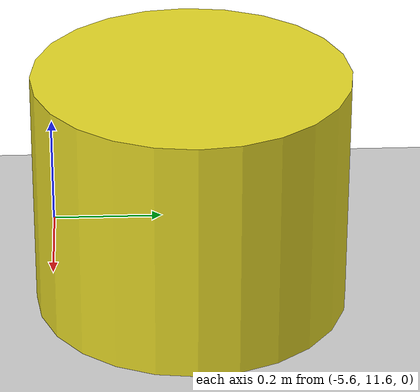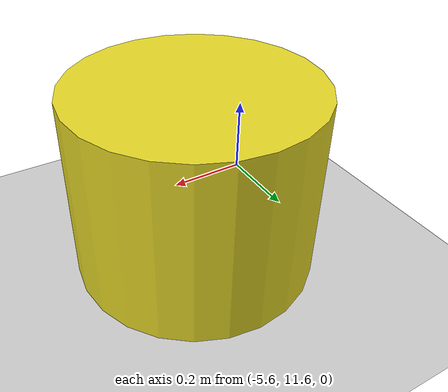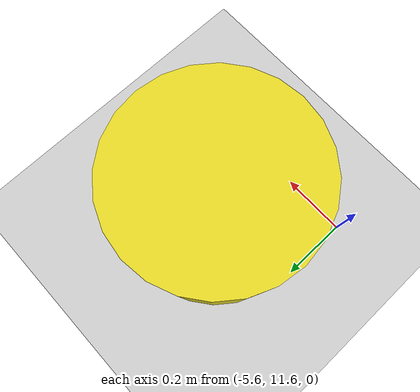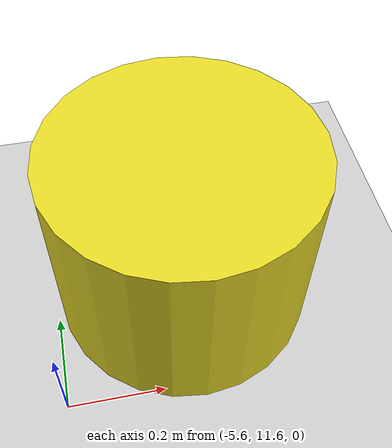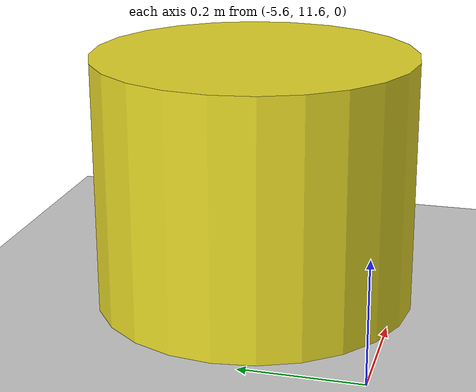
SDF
<sdf version="1.7">
 <world name="default">
  <model name="ground_plane">
   <static>1</static>
   <link name="link">
    <collision name="collision">
     <laser_retro>100</laser_retro>
     <geometry><plane><normal>0 0 1</normal><size>100 100</size></plane></geometry>
     <surface><friction><ode><mu>100</mu><mu2>50</mu2></ode></friction></surface>
    </collision>
    <visual name="visual">
     <laser_retro>100</laser_retro>
     <cast_shadows>0</cast_shadows>
     <geometry><plane><normal>0 0 1</normal><size>100 100</size></plane></geometry>
     <material>
      <script><uri>file://media/materials/scripts/gazebo.material</uri><name>Gazebo/Grey</name></script>
     </material>
    </visual>
   </link>
  </model>
  <model name="yellow_sylinder">
   <link name="link">
    <inertial>
     <mass>0.125845</mass>
     <inertia>
      <ixx>0.00422405</ixx>
      <ixy>0</ixy>
      <ixz>0</ixz>
      <iyy>0.00422405</iyy>
      <iyz>0</iyz>
      <izz>0.00465291</izz>
     </inertia>
    </inertial>
    <pose>0.071603 -0.063343 -0.135618 0 -0 0</pose>
    <visual name="visual">
     <geometry><cylinder><radius>0.271931</radius><length>0.425377</length></cylinder></geometry>
     <material>
      <script><name>Gazebo/Yellow</name><uri>file://media/materials/scripts/gazebo.material</uri></script>
      <shader type="pixel"><normal_map>__default__</normal_map></shader>
      <ambient>1 1 0 1</ambient>
      <diffuse>1 1 0 1</diffuse>
      <emissive>0 0 0 1</emissive>
     </material>
    </visual>
    <collision name="collision">
     <geometry><cylinder><radius>0.271931</radius><length>0.425377</length></cylinder></geometry>
     <surface>
      <friction>
       <ode><mu>1</mu><mu2>1</mu2><fdir1>0 0 0</fdir1><slip1>0</slip1><slip2>0</slip2></ode>
       <torsional>
        <coefficient>1</coefficient>
        <patch_radius>0</patch_radius>
        <surface_radius>0</surface_radius>
        <use_patch_radius>1</use_patch_radius>
        <ode><slip>0</slip></ode>
       </torsional>
      </friction>
      <bounce><restitution_coefficient>0</restitution_coefficient><threshold>1e+06</threshold></bounce>
      <contact>
       <collide_without_contact>0</collide_without_contact>
       <collide_without_contact_bitmask>1</collide_without_contact_bitmask>
       <collide_bitmask>1</collide_bitmask>
       <ode>
        <soft_cfm>0</soft_cfm>
        <soft_erp>0.2</soft_erp>
        <kp>1e+13</kp>
        <kd>1</kd>
        <max_vel>0.01</max_vel>
        <min_depth>0</min_depth>
       </ode>
       <bullet>
        <split_impulse>1</split_impulse>
        <split_impulse_penetration_threshold>-0.01</split_impulse_penetration_threshold>
        <soft_cfm>0</soft_cfm>
        <soft_erp>0.2</soft_erp>
        <kp>1e+13</kp>
        <kd>1</kd>
       </bullet>
      </contact>
     </surface>
    </collision>
   </link>
   <static>0</static>
   <pose>-5.39038 11.9072 0.348306 -0 -0 -4.1e-05</pose>
  </model>
 </world>
</sdf>
